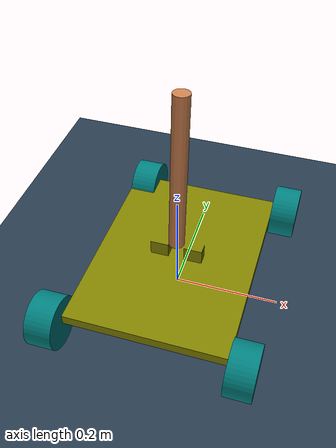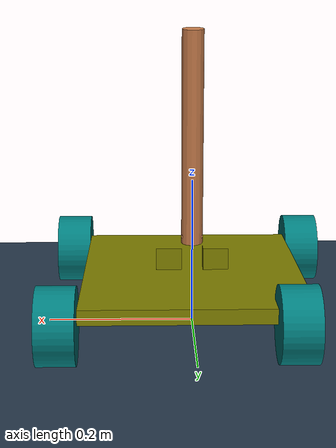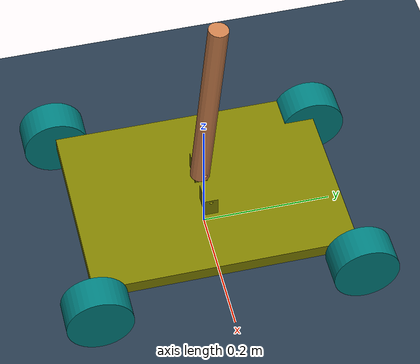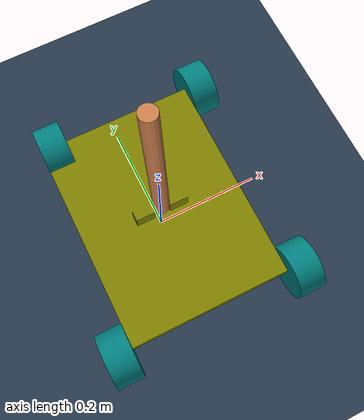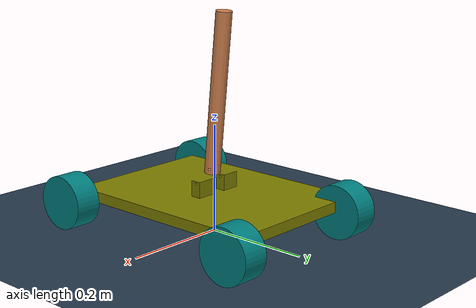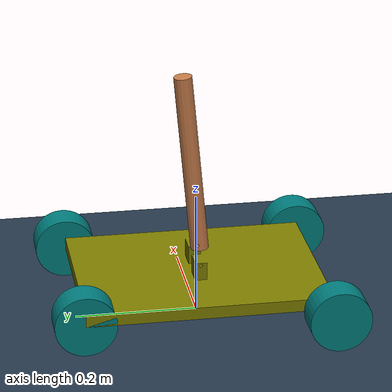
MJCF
<mujoco model="inerted_pendulum.SLDASM">
  <compiler angle="radian" autolimits="true" meshdir="./meshes"/>
  <asset>
    <mesh name="base_link" file="base_link.stl"/>
    <mesh name="fl_wheel" file="fl_wheel.stl"/>
    <mesh name="pendulum" file="pendulum.stl"/>
    <mesh name="br_wheel" file="br_wheel.stl"/>
    <mesh name="bl_wheel" file="bl_wheel.stl"/>
    <mesh name="fr_wheel" file="fr_wheel.stl"/>

    <texture type="skybox" builtin="gradient" rgb1="0.3 0.5 0.7" rgb2="0 0 0" width="512" height="512" />
    <texture name="texplane" type="2d" builtin="checker" rgb1=".2 .3 .4" rgb2=".1 0.15 0.2" width="512" height="512" mark="cross" markrgb=".8 .8 .8" />
    <material name="matplane" reflectance="0.3" texture="texplane" texrepeat="1 1" texuniform="true" />
  </asset>
  <worldbody>
    <light directional="true" diffuse=".4 .4 .4" specular="0.1 0.1 0.1" pos="0 0 5.0" dir="0 0 -1" castshadow="false" />
    <light directional="true" diffuse=".6 .6 .6" specular="0.2 0.2 0.2" pos="0 0 4" dir="0 0 -1" />
    <geom name="floor" pos="0 0 0" size="15 15 1" type="plane" material="matplane" margin="0.001" condim="3" friction="1 0.005 0.0001" />

    <body name="base_link" pos="0.0 0.0 0.1">
      <freejoint/>
      <inertial pos="0 0 -0.034589" mass="2" diaginertia="0.032109 0.018154 0.050048"/>
      <geom type="mesh" rgba="0.5 0.5 0 1" mesh="base_link"/>
      <body name="fl_wheel" pos="0.15 -0.2 -0.045" quat="0.707107 0.707107 0 0">
        <inertial pos="0.025 0 0" mass="0.3927" diaginertia="0.00049087 0.00032725 0.00032725"/>
        <joint name="fl_joint" pos="0 0 0" axis="1 0 0"/>
        <geom type="mesh" rgba="0 0.5 0.5 1" mesh="fl_wheel"/>
      </body>
      <body name="pendulum" pos="0.0 0.0 0.02" quat="0.522169 0.476802 0.522169 0.476802">
        <inertial pos="-0.005013 0.14037 -8.8497e-09" quat="0.707107 0.707107 -8.68359e-05 -8.68359e-05" mass="0.7" diaginertia="0.0015915 0.0015915 2.38049e-05"/>
        <joint name="pendulum_joint" pos="0 0 0" axis="0 0 1" range="-1.5 1.5"/>
        <geom type="mesh" rgba="0.8 0.5 0.3 1" mesh="pendulum"/>
      </body>
      <body name="br_wheel" pos="-0.15 0.2 -0.045" quat="0.707105 0.707108 0 0">
        <inertial pos="-0.025 0 0" mass="0.3927" diaginertia="0.00049087 0.00032725 0.00032725"/>
        <joint name="br_joint" pos="0 0 0" axis="1 0 0"/>
        <geom type="mesh" rgba="0 0.5 0.5 1" mesh="br_wheel"/>
      </body>
      <body name="bl_wheel" pos="0.15 0.2 -0.045" quat="0.707107 0.707107 0 0">
        <inertial pos="0.025 0 0" mass="0.3927" diaginertia="0.00049087 0.00032725 0.00032725"/>
        <joint name="bl_joint" pos="0 0 0" axis="1 0 0"/>
        <geom type="mesh" rgba="0 0.5 0.5 1" mesh="bl_wheel"/>
      </body>
      <body name="fr_wheel" pos="-0.15 -0.2 -0.045" quat="0.707105 0.707108 0 0">
        <inertial pos="-0.025 0 0" mass="0.3927" diaginertia="0.00049087 0.00032725 0.00032725"/>
        <joint name="fr_joint" pos="0 0 0" axis="1 0 0"/>
        <geom type="mesh" rgba="0 0.5 0.5 1" mesh="fr_wheel"/>
      </body>
    </body>
  </worldbody>
</mujoco>
